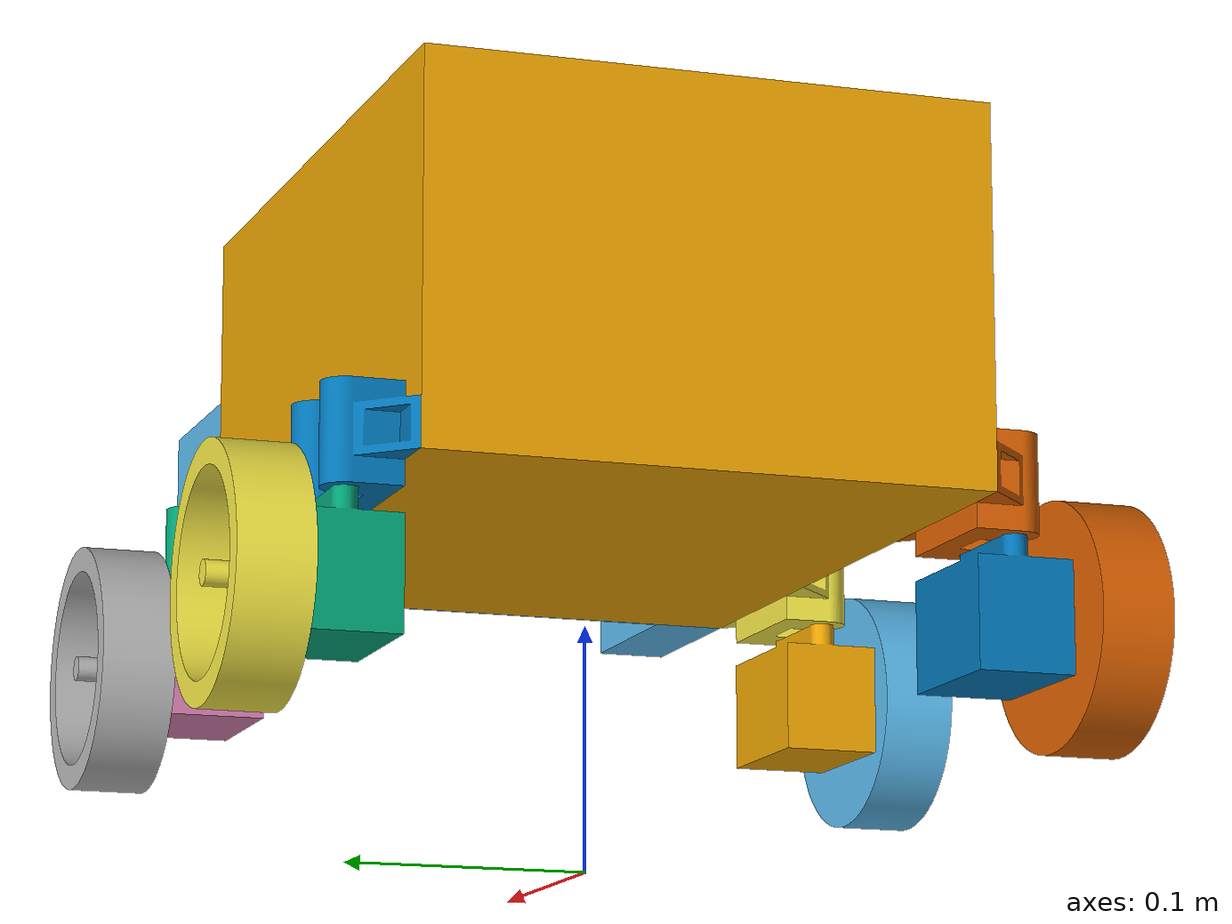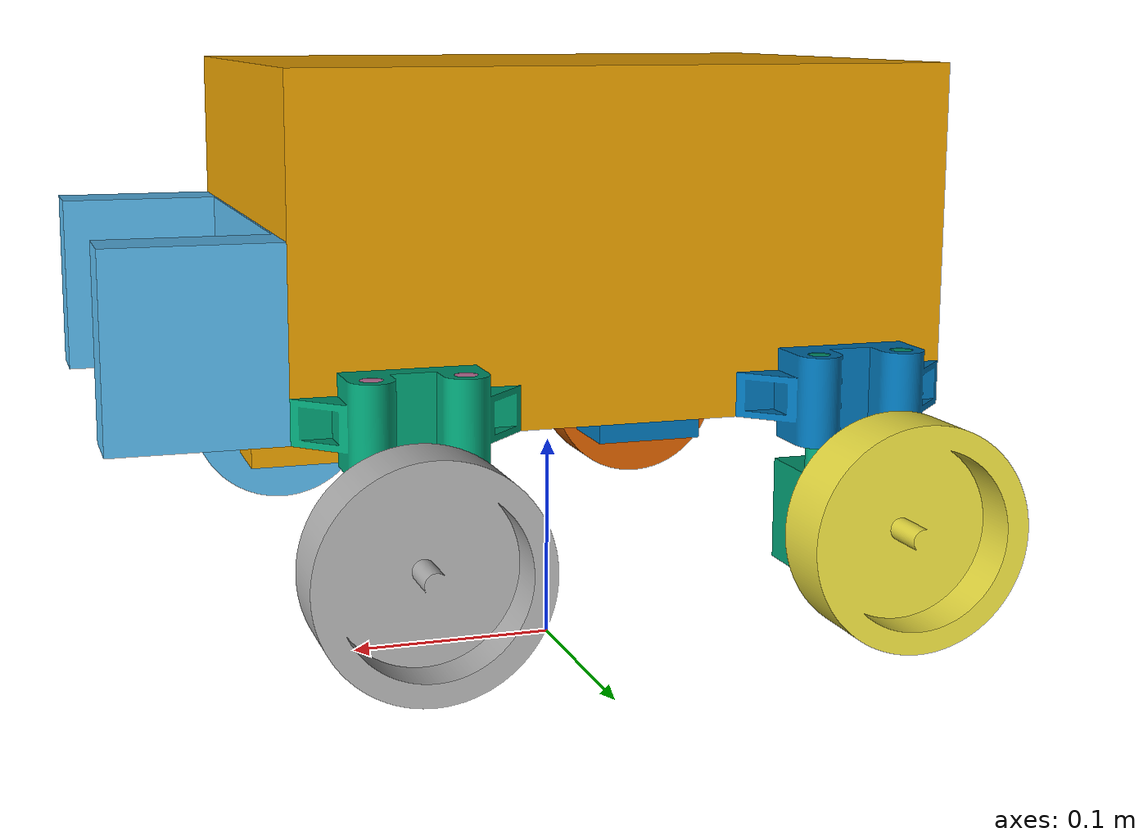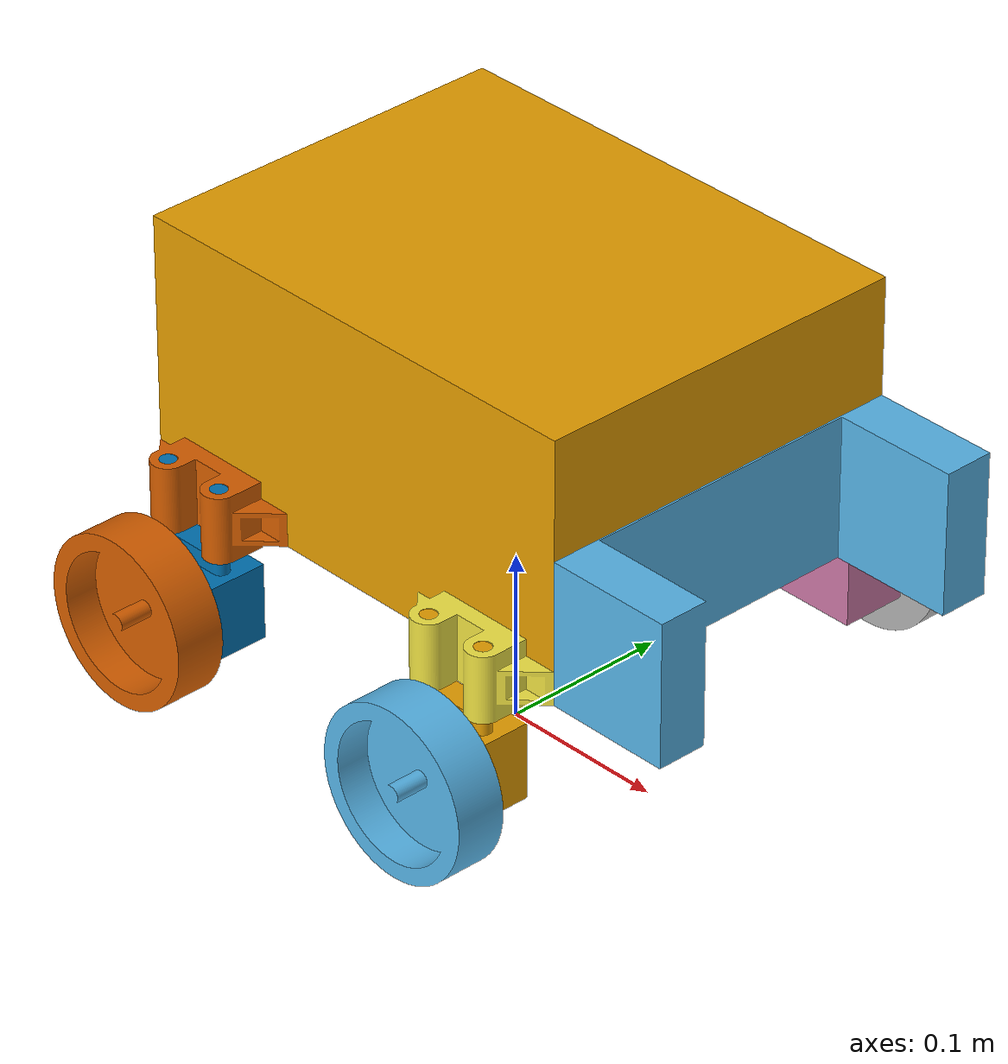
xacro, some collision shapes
<?xml version='1.0'?>

<robot name="run_2" xmlns:xacro="http://ros.org/wiki/xacro">
	<xacro:include filename="$(find mk_2)/gazebo/property.gazebo"/>
	<!--criterion-->
	<xacro:property name="PI" value="3.141592"/>
	<!--//////////base properties//////////-->
	<xacro:property name="base_x" value="0.3"/>
	<xacro:property name="base_y" value="0.23"/>
	<xacro:property name="base_z" value="0.1"/>
	<xacro:property name="base_m" value="2.0"/>
	<!--//////////suspension properties//////////-->
	<xacro:property name="suspension_x" value="0.06"/>
	<xacro:property name="suspension_y" value="0.03"/>
	<xacro:property name="suspension_z" value="0.04"/>
	<xacro:property name="suspension_m" value="0.063"/>
	<!--//////////actuator properties//////////-->
	<xacro:property name="actuator_x" value="0.061"/>
	<xacro:property name="actuator_y" value="0.0405"/>
	<xacro:property name="actuator_z" value="0.0455"/>
	<xacro:property name="actuator_m" value="0.1276"/>
	<!--//////////wheel properties//////////-->
	<xacro:property name="wheel_w" value="0.03"/>
	<xacro:property name="wheel_d" value="0.1"/>
	<xacro:property name="wheel_m" value="0.14"/>

	<!--//////////BASE//////////-->
	<link name="base">
		<collision>
			<origin xyz="0 0 0.21025" rpy="0 0 0"/>
			<geometry>
				<box size="0.3 0.23 0.155"/>
				<!--mesh filename="package://mk_2/mesh/"-->
			</geometry>
		</collision>

		<visual>
			<origin xyz="0 0 0.21025" rpy="0 0 0"/>
			<geometry>
				<!--box size="0.3 0.23 0.155"/-->
				<mesh filename="package://mk_2/mesh/base.dae"/>
			</geometry>
		</visual>

		<inertial>
			<origin xyz="0 0 0.21025" rpy="0 0 0"/>
			<mass value="${base_m}"/>
			<inertia ixx="${base_m / 12.0 * (base_y * base_y + base_z * base_z)}" ixy="0" ixz="0"
						iyy="${base_m / 12.0 * (base_z * base_z + base_x * base_x)}" iyz="0"
						izz="${base_m / 12.0 * (base_x * base_x + base_y * base_y)}"/>
		</inertial>
	</link>

	<!--//////////BALLCOLLECTOR//////////-->
	<link name="ballcollector">
		<collision>
			<origin xyz="0 0 0" rpy="0 0 0"/>
			<geometry>
				<mesh filename="package://mk_2/mesh/ballcollector.dae"/>
			</geometry>
		</collision>

		<visual>
			<origin xyz="0 0 0" rpy="0 0 0"/>
			<geometry>
				<!--box size="0.3 0.23 0.155"/-->
				<mesh filename="package://mk_2/mesh/ballcollector.dae"/>
			</geometry>
		</visual>

		<inertial>
			<origin xyz="0 0 0" rpy="0 0 0"/>
			<mass value="0.2"/>
			<inertia ixx="${0.2 / 12.0 * (base_y * base_y + base_z * base_z)}" ixy="0" ixz="0"
						iyy="${0.2 / 12.0 * (base_z * base_z + base_x * base_x)}" iyz="0"
						izz="${0.2 / 12.0 * (base_x * base_x + base_y * base_y)}"/>
		</inertial>
	</link>
	<joint name="collector" type="fixed">
		<origin xyz="0.15 0 0.17525" rpy="0 0 0"/>
		<parent link="base"/>
		<child link="ballcollector"/>
	</joint>
	<!--//////////SUSPENSION//////////-->
	<xacro:macro name="suspension" params="prefix *direction *structure *joint">
		<link name="${prefix}_suspension">

			<visual>
				<xacro:insert_block name="structure"/>
				<geometry>
					<mesh filename="package://mk_2/mesh/upsuspension.dae"/>
				</geometry>
			</visual>

			<inertial>
				<xacro:insert_block name="direction"/>
				<!--origin xyz="0 0.015 0" rpy="0 0 0"/-->
				<mass value="${suspension_m}"/>
				<inertia ixx="${suspension_m / 12.0 * (suspension_y * suspension_y + suspension_z * suspension_z)}" ixy="0" ixz="0"
							iyy="${suspension_m / 12.0 * (suspension_z * suspension_z + suspension_x * suspension_x)}" iyz="0"
							izz="${suspension_m / 12.0 * (suspension_x * suspension_x + suspension_y * suspension_y)}"/>
			</inertial>
		</link>

		<joint name="${prefix}_Sjoint" type="fixed">
			<xacro:insert_block name="joint"/>
			<parent link="base"/>
			<child link="${prefix}_suspension"/>
		</joint>
	</xacro:macro>

	<xacro:suspension prefix="FL">
		<origin xyz="0 0.015 0" rpy="0 0 0"/>
		<origin xyz="0 0 0" rpy="0 0 0"/>
		<origin xyz="0.100 0.115 0.14275" rpy="0 0 0"/>
	</xacro:suspension>
	<xacro:suspension prefix="FR">
		<origin xyz="0 -0.015 0" rpy="0 0 0"/>
		<origin xyz="0 0 0" rpy="0 0 ${PI}"/>
		<origin xyz="0.100 -0.115 0.14275" rpy="0 0 0"/>
	</xacro:suspension>
	<xacro:suspension prefix="BL">
		<origin xyz="0 0.015 0" rpy="0 0 0"/>
		<origin xyz="0 0 0" rpy="0 0 0"/>
		<origin xyz="-0.100 0.115 0.14275" rpy="0 0 0"/>
	</xacro:suspension>
	<xacro:suspension prefix="BR">
		<origin xyz="0 -0.015 0" rpy="0 0 0"/>
		<origin xyz="0 0 0" rpy="0 0 ${PI}"/>
		<origin xyz="-0.100 -0.115 0.14275" rpy="0 0 0"/>
	</xacro:suspension>
	<!--//////////ACTUATORS & WHEELS//////////-->
	<xacro:macro name="actwheel" params="prefix *structure *meshmesh *joint *wjoint">
		<link name="${prefix}_actuator">
			<collision>
				<origin xyz="0 0 -0.02275" rpy="0 0 0"/>
				<geometry>
					<box size="0.061 0.0405 0.0455"/>
					<!--mesh filename="package://mk_2/mesh/"/-->
				</geometry>
			</collision>

			<visual>
				<xacro:insert_block name="structure"/>
				<geometry>
					<xacro:insert_block name="meshmesh"/>
					<!--mesh filename="package://mk_2/mesh/upsuspension.dae"/-->
				</geometry>
			</visual>

			<inertial>
				<origin xyz="0 0 -0.02275" rpy="0 0 0"/>
				<!--origin xyz="0 0.015 0" rpy="0 0 0"/-->
				<mass value="${actuator_m}"/>
				<inertia ixx="${actuator_m / 12.0 * (actuator_y * actuator_y + actuator_z * actuator_z)}" ixy="0" ixz="0"
							iyy="${actuator_m / 12.0 * (actuator_z * actuator_z + actuator_x * actuator_x)}" iyz="0"
							izz="${actuator_m / 12.0 * (actuator_x * actuator_x + actuator_y * actuator_y)}"/>
			</inertial>
		</link>

		<joint name="${prefix}_Ajoint" type="prismatic">
			<xacro:insert_block name="joint"/>
			<parent link="base"/>
			<child link="${prefix}_actuator"/>
			<axis xyz="0 0 1"/>
			<limit effort="1000.0" velocity="1000.0" upper="0.000" lower="-0.040"/>
		</joint>

		<link name="${prefix}_wheel">
			<collision>
				<origin xyz="0 0 0" rpy="${PI/2.0} 0 0"/>
				<geometry>
					<cylinder radius="${wheel_d / 2.0}" length="${wheel_w}"/>
					<!--mesh filename="package://mk_2/mesh/"/-->
				</geometry>
			</collision>

			<visual>
				<xacro:insert_block name="structure"/>
				<geometry>
					<mesh filename="package://mk_2/mesh/wheel.dae"/>
				</geometry>
			</visual>

			<inertial>
				<origin xyz="0 0 0" rpy="0 0 0"/>
				<!--origin xyz="0 0.015 0" rpy="0 0 0"/-->
				<mass value="${wheel_m}"/>
				<inertia ixx="${wheel_m / 12.0 * (3.0 / 4.0 * (wheel_d) * (wheel_d) + (wheel_w) * (wheel_w))}" ixy="0" ixz="0"
							iyy="${wheel_m / 2.0 * (wheel_d / 2.0) * (wheel_d / 2.0)}" iyz="0"
							izz="${wheel_m / 12.0 * (3.0 / 4.0 * (wheel_d) * (wheel_d) + (wheel_w) * (wheel_w))}" />
			</inertial>
		</link>

		<joint name="${prefix}_Wjoint" type="continuous">
			<xacro:insert_block name="wjoint"/>
			<parent link="${prefix}_actuator"/>
			<child link="${prefix}_wheel"/>
			<axis xyz="0 1 0"/>
		</joint>

		<transmission name="suspension_${prefix}_transmission">
			<type>transmission_interface/SimpleTransmission</type>
			<joint name="${prefix}_Ajoint">
				<hardwareInterface>hardware_interface/EffortJointInterface</hardwareInterface>
			</joint>
			<actuator name="${prefix}_Amotor">
				<hardwareInterface>hardware_interface/EffortJointInterface</hardwareInterface>
				<mechanicalReduction>1</mechanicalReduction>
			</actuator>
		</transmission>

		<transmission name="actuator_${prefix}_transmission">
			<type>transmission_interface/SimpleTransmission</type>
			<joint name="${prefix}_Wjoint">
				<hardwareInterface>hardware_interface/EffortJointInterface</hardwareInterface>
			</joint>
			<actuator name="${prefix}_Wmotor">
				<hardwareInterface>hardware_interface/EffortJointInterface</hardwareInterface>
				<mechanicalReduction>1</mechanicalReduction>
			</actuator>
		</transmission>
	</xacro:macro>

	<xacro:actwheel prefix="FL">
		<origin xyz="0 0 0" rpy="0 0 0"/>
		<mesh filename="package://mk_2/mesh/actuator.dae"/>
		<origin xyz="0.100 0.135 0.11275" rpy="0 0 0"/>
		<origin xyz="0.006293 ${(0.02025 + (wheel_w/2.0))} -0.02275" rpy="0 0 0"/>
	</xacro:actwheel>
	<xacro:actwheel prefix="FR">
		<origin xyz="0 0 0" rpy="0 0 ${PI}"/>
		<mesh filename="package://mk_2/mesh/actuator_2.dae"/>
		<origin xyz="0.100 -0.135 0.11275" rpy="0 0 0"/>
		<origin xyz="0.006293 ${-(0.02025 + (wheel_w/2.0))} -0.02275" rpy="0 0 0"/>
	</xacro:actwheel>
	<xacro:actwheel prefix="BL">
		<origin xyz="0 0 0" rpy="0 0 0"/>
		<mesh filename="package://mk_2/mesh/actuator_2.dae"/>
		<origin xyz="-0.100 0.135 0.11275" rpy="0 0 0"/>
		<origin xyz="-0.006293 ${(0.02025 + (wheel_w/2.0))} -0.02275" rpy="0 0 0"/>
	</xacro:actwheel>
	<xacro:actwheel prefix="BR">
		<origin xyz="0 0 0" rpy="0 0 ${PI}"/>
		<mesh filename="package://mk_2/mesh/actuator.dae"/>
		<origin xyz="-0.100 -0.135 0.11275" rpy="0 0 0"/>
		<origin xyz="-0.006293 ${-(0.02025 + (wheel_w/2.0))} -0.02275" rpy="0 0 0"/>
	</xacro:actwheel>
	<!--put run_2 into gazebo space-->
	<gazebo>
		<plugin name="gazebo_ros_control" filename="libgazebo_ros_control.so">
			<robotNamespace>/run_2</robotNamespace>
			<robotSimType>gazebo_ros_control/DefaultRobotHWSim</robotSimType>
		</plugin>
	</gazebo>
</robot>
